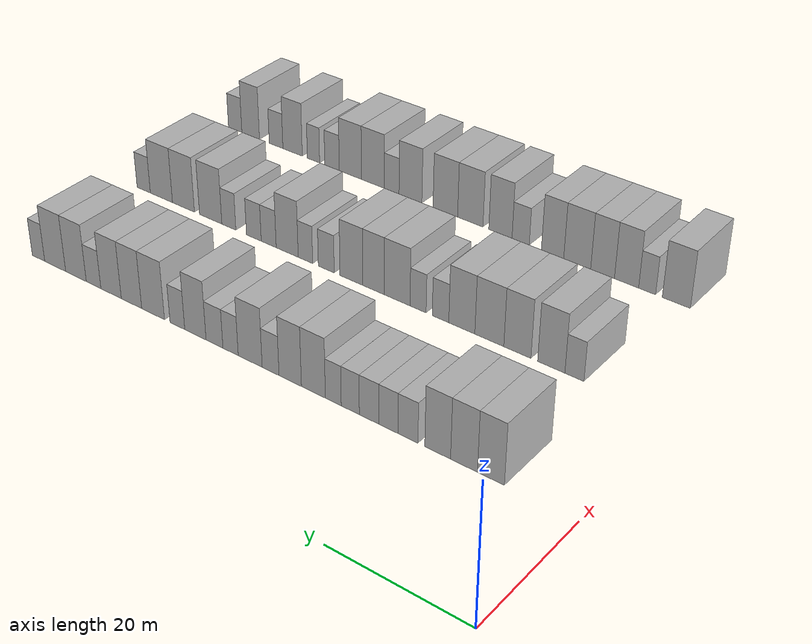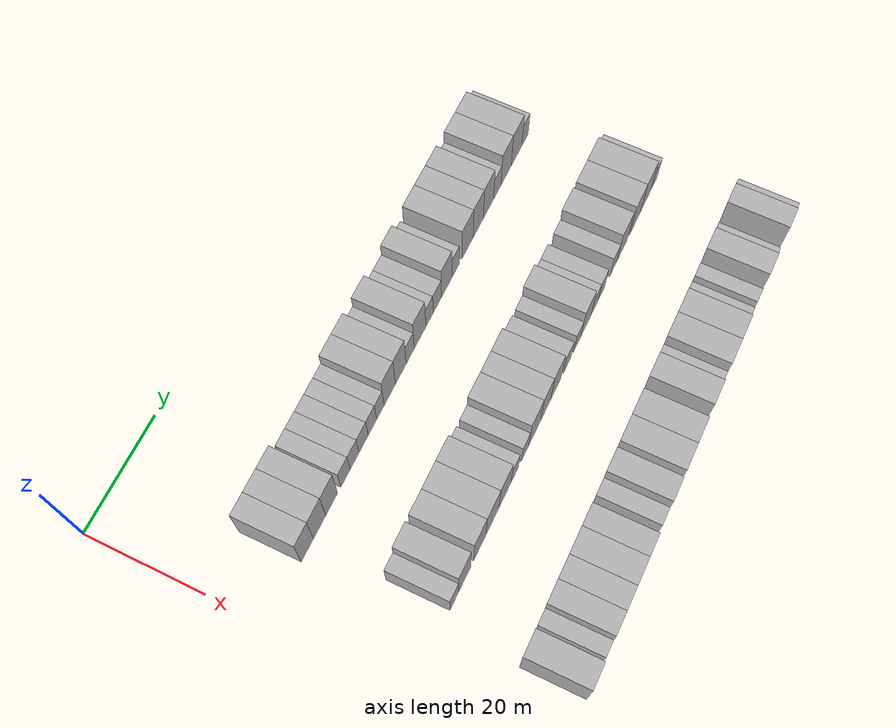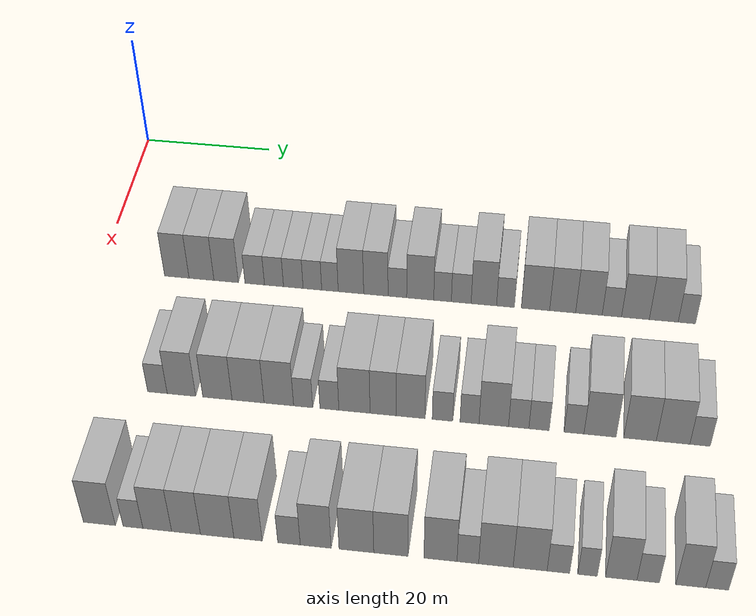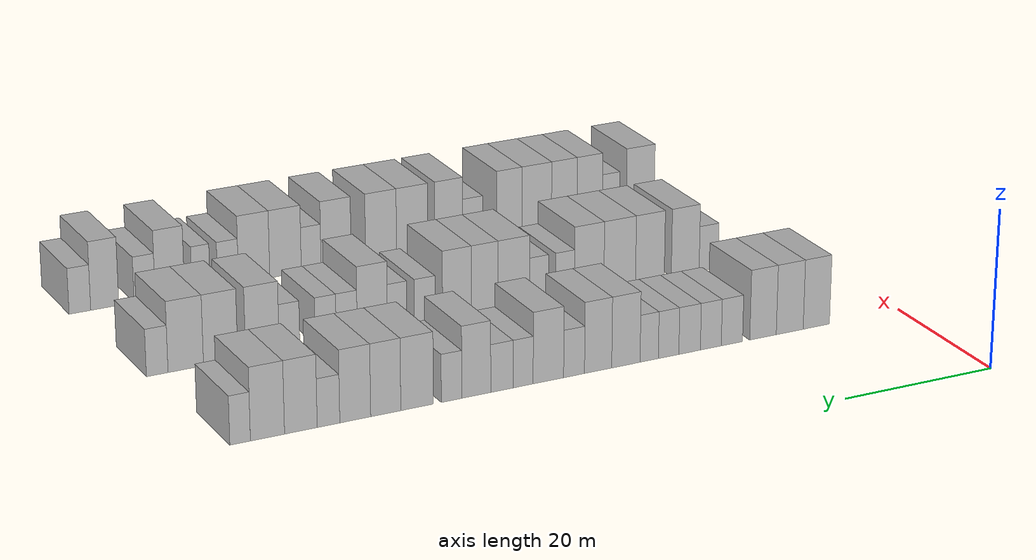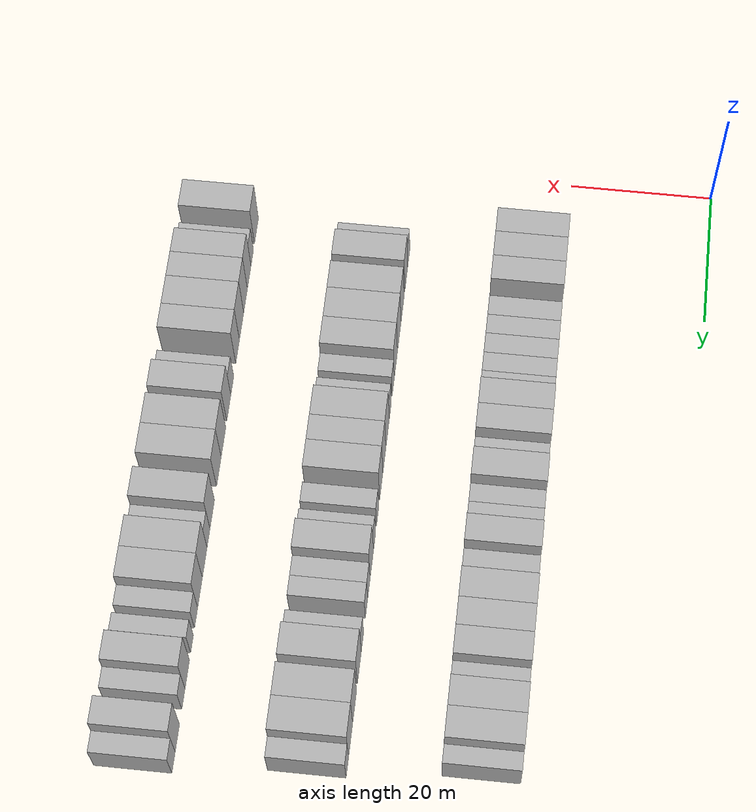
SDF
<sdf version="1.6">
 <world name="default">
  <model name="building_59">
   <static>1</static>
   <pose>25.0000 11.7343 0 0.000000 0.000000 0.000000</pose>
   <link name="link">
    <pose>0 0 4.50 0 0 0</pose>
    <collision name="collision"><geometry><box><size>10.0000 3.7056 9.0000</size></box></geometry></collision>
    <visual name="visual">
     <cast_shadows>0</cast_shadows>
     <geometry><box><size>10.0000 3.7056 9.0000</size></box></geometry>
     <material>
      <script>
       <uri>model://HANNAS_wall/materials/scripts</uri>
       <uri>model://HANNAS_wall/materials/textures</uri>
       <name>vrc/HANNAS_wall</name>
      </script>
     </material>
    </visual>
   </link>
  </model>
  <model name="building_60">
   <static>1</static>
   <pose>25.0000 15.4737 0 0.000000 0.000000 0.000000</pose>
   <link name="link">
    <pose>0 0 4.50 0 0 0</pose>
    <collision name="collision"><geometry><box><size>10.0000 3.7731 9.0000</size></box></geometry></collision>
    <visual name="visual">
     <cast_shadows>0</cast_shadows>
     <geometry><box><size>10.0000 3.7731 9.0000</size></box></geometry>
     <material>
      <script>
       <uri>model://HANNAS_wall/materials/scripts</uri>
       <uri>model://HANNAS_wall/materials/textures</uri>
       <name>vrc/HANNAS_wall</name>
      </script>
     </material>
    </visual>
   </link>
  </model>
  <model name="building_61">
   <static>1</static>
   <pose>25.0000 19.2028 0 0.000000 0.000000 0.000000</pose>
   <link name="link">
    <pose>0 0 4.50 0 0 0</pose>
    <collision name="collision"><geometry><box><size>10.0000 3.6852 9.0000</size></box></geometry></collision>
    <visual name="visual">
     <cast_shadows>0</cast_shadows>
     <geometry><box><size>10.0000 3.6852 9.0000</size></box></geometry>
     <material>
      <script>
       <uri>model://HANNAS_wall/materials/scripts</uri>
       <uri>model://HANNAS_wall/materials/textures</uri>
       <name>vrc/HANNAS_wall</name>
      </script>
     </material>
    </visual>
   </link>
  </model>
  <model name="building_62">
   <static>1</static>
   <pose>25.0000 23.5116 0 0.000000 0.000000 0.000000</pose>
   <link name="link">
    <pose>0 0 3.00 0 0 0</pose>
    <collision name="collision"><geometry><box><size>10.0000 2.9324 6.0000</size></box></geometry></collision>
    <visual name="visual">
     <cast_shadows>0</cast_shadows>
     <geometry><box><size>10.0000 2.9324 6.0000</size></box></geometry>
     <material>
      <script>
       <uri>model://HANNAS_wall/materials/scripts</uri>
       <uri>model://HANNAS_wall/materials/textures</uri>
       <name>vrc/HANNAS_wall</name>
      </script>
     </material>
    </visual>
   </link>
  </model>
  <model name="building_63">
   <static>1</static>
   <pose>25.0000 26.4066 0 0.000000 0.000000 0.000000</pose>
   <link name="link">
    <pose>0 0 3.00 0 0 0</pose>
    <collision name="collision"><geometry><box><size>10.0000 2.8575 6.0000</size></box></geometry></collision>
    <visual name="visual">
     <cast_shadows>0</cast_shadows>
     <geometry><box><size>10.0000 2.8575 6.0000</size></box></geometry>
     <material>
      <script>
       <uri>model://HANNAS_wall/materials/scripts</uri>
       <uri>model://HANNAS_wall/materials/textures</uri>
       <name>vrc/HANNAS_wall</name>
      </script>
     </material>
    </visual>
   </link>
  </model>
  <model name="building_64">
   <static>1</static>
   <pose>25.0000 29.3015 0 0.000000 0.000000 0.000000</pose>
   <link name="link">
    <pose>0 0 3.00 0 0 0</pose>
    <collision name="collision"><geometry><box><size>10.0000 2.9322 6.0000</size></box></geometry></collision>
    <visual name="visual">
     <cast_shadows>0</cast_shadows>
     <geometry><box><size>10.0000 2.9322 6.0000</size></box></geometry>
     <material>
      <script>
       <uri>model://HANNAS_wall/materials/scripts</uri>
       <uri>model://HANNAS_wall/materials/textures</uri>
       <name>vrc/HANNAS_wall</name>
      </script>
     </material>
    </visual>
   </link>
  </model>
  <model name="building_65">
   <static>1</static>
   <pose>25.0000 32.1560 0 0.000000 0.000000 0.000000</pose>
   <link name="link">
    <pose>0 0 3.00 0 0 0</pose>
    <collision name="collision"><geometry><box><size>10.0000 2.7769 6.0000</size></box></geometry></collision>
    <visual name="visual">
     <cast_shadows>0</cast_shadows>
     <geometry><box><size>10.0000 2.7769 6.0000</size></box></geometry>
     <material>
      <script>
       <uri>model://HANNAS_wall/materials/scripts</uri>
       <uri>model://HANNAS_wall/materials/textures</uri>
       <name>vrc/HANNAS_wall</name>
      </script>
     </material>
    </visual>
   </link>
  </model>
  <model name="building_66">
   <static>1</static>
   <pose>25.0000 34.7752 0 0.000000 0.000000 0.000000</pose>
   <link name="link">
    <pose>0 0 3.00 0 0 0</pose>
    <collision name="collision"><geometry><box><size>10.0000 2.4614 6.0000</size></box></geometry></collision>
    <visual name="visual">
     <cast_shadows>0</cast_shadows>
     <geometry><box><size>10.0000 2.4614 6.0000</size></box></geometry>
     <material>
      <script>
       <uri>model://HANNAS_wall/materials/scripts</uri>
       <uri>model://HANNAS_wall/materials/textures</uri>
       <name>vrc/HANNAS_wall</name>
      </script>
     </material>
    </visual>
   </link>
  </model>
  <model name="building_67">
   <static>1</static>
   <pose>25.0000 37.8999 0 0.000000 0.000000 0.000000</pose>
   <link name="link">
    <pose>0 0 4.50 0 0 0</pose>
    <collision name="collision"><geometry><box><size>10.0000 3.7882 9.0000</size></box></geometry></collision>
    <visual name="visual">
     <cast_shadows>0</cast_shadows>
     <geometry><box><size>10.0000 3.7882 9.0000</size></box></geometry>
     <material>
      <script>
       <uri>model://HANNAS_wall/materials/scripts</uri>
       <uri>model://HANNAS_wall/materials/textures</uri>
       <name>vrc/HANNAS_wall</name>
      </script>
     </material>
    </visual>
   </link>
  </model>
  <model name="building_68">
   <static>1</static>
   <pose>25.0000 41.6004 0 0.000000 0.000000 0.000000</pose>
   <link name="link">
    <pose>0 0 4.50 0 0 0</pose>
    <collision name="collision"><geometry><box><size>10.0000 3.6127 9.0000</size></box></geometry></collision>
    <visual name="visual">
     <cast_shadows>0</cast_shadows>
     <geometry><box><size>10.0000 3.6127 9.0000</size></box></geometry>
     <material>
      <script>
       <uri>model://HANNAS_wall/materials/scripts</uri>
       <uri>model://HANNAS_wall/materials/textures</uri>
       <name>vrc/HANNAS_wall</name>
      </script>
     </material>
    </visual>
   </link>
  </model>
  <model name="building_69">
   <static>1</static>
   <pose>25.0000 44.7845 0 0.000000 0.000000 0.000000</pose>
   <link name="link">
    <pose>0 0 3.00 0 0 0</pose>
    <collision name="collision"><geometry><box><size>10.0000 2.7555 6.0000</size></box></geometry></collision>
    <visual name="visual">
     <cast_shadows>0</cast_shadows>
     <geometry><box><size>10.0000 2.7555 6.0000</size></box></geometry>
     <material>
      <script>
       <uri>model://HANNAS_wall/materials/scripts</uri>
       <uri>model://HANNAS_wall/materials/textures</uri>
       <name>vrc/HANNAS_wall</name>
      </script>
     </material>
    </visual>
   </link>
  </model>
  <model name="building_70">
   <static>1</static>
   <pose>25.0000 48.1586 0 0.000000 0.000000 0.000000</pose>
   <link name="link">
    <pose>0 0 4.50 0 0 0</pose>
    <collision name="collision"><geometry><box><size>10.0000 3.9929 9.0000</size></box></geometry></collision>
    <visual name="visual">
     <cast_shadows>0</cast_shadows>
     <geometry><box><size>10.0000 3.9929 9.0000</size></box></geometry>
     <material>
      <script>
       <uri>model://HANNAS_wall/materials/scripts</uri>
       <uri>model://HANNAS_wall/materials/textures</uri>
       <name>vrc/HANNAS_wall</name>
      </script>
     </material>
    </visual>
   </link>
  </model>
  <model name="building_71">
   <static>1</static>
   <pose>25.0000 51.4512 0 0.000000 0.000000 0.000000</pose>
   <link name="link">
    <pose>0 0 3.00 0 0 0</pose>
    <collision name="collision"><geometry><box><size>10.0000 2.5922 6.0000</size></box></geometry></collision>
    <visual name="visual">
     <cast_shadows>0</cast_shadows>
     <geometry><box><size>10.0000 2.5922 6.0000</size></box></geometry>
     <material>
      <script>
       <uri>model://HANNAS_wall/materials/scripts</uri>
       <uri>model://HANNAS_wall/materials/textures</uri>
       <name>vrc/HANNAS_wall</name>
      </script>
     </material>
    </visual>
   </link>
  </model>
  <model name="building_72">
   <static>1</static>
   <pose>25.0000 54.1988 0 0.000000 0.000000 0.000000</pose>
   <link name="link">
    <pose>0 0 3.00 0 0 0</pose>
    <collision name="collision"><geometry><box><size>10.0000 2.9031 6.0000</size></box></geometry></collision>
    <visual name="visual">
     <cast_shadows>0</cast_shadows>
     <geometry><box><size>10.0000 2.9031 6.0000</size></box></geometry>
     <material>
      <script>
       <uri>model://HANNAS_wall/materials/scripts</uri>
       <uri>model://HANNAS_wall/materials/textures</uri>
       <name>vrc/HANNAS_wall</name>
      </script>
     </material>
    </visual>
   </link>
  </model>
  <model name="building_73">
   <static>1</static>
   <pose>25.0000 57.5087 0 0.000000 0.000000 0.000000</pose>
   <link name="link">
    <pose>0 0 4.50 0 0 0</pose>
    <collision name="collision"><geometry><box><size>10.0000 3.7166 9.0000</size></box></geometry></collision>
    <visual name="visual">
     <cast_shadows>0</cast_shadows>
     <geometry><box><size>10.0000 3.7166 9.0000</size></box></geometry>
     <material>
      <script>
       <uri>model://HANNAS_wall/materials/scripts</uri>
       <uri>model://HANNAS_wall/materials/textures</uri>
       <name>vrc/HANNAS_wall</name>
      </script>
     </material>
    </visual>
   </link>
  </model>
  <model name="building_74">
   <static>1</static>
   <pose>25.0000 60.6715 0 0.000000 0.000000 0.000000</pose>
   <link name="link">
    <pose>0 0 3.00 0 0 0</pose>
    <collision name="collision"><geometry><box><size>10.0000 2.6091 6.0000</size></box></geometry></collision>
    <visual name="visual">
     <cast_shadows>0</cast_shadows>
     <geometry><box><size>10.0000 2.6091 6.0000</size></box></geometry>
     <material>
      <script>
       <uri>model://HANNAS_wall/materials/scripts</uri>
       <uri>model://HANNAS_wall/materials/textures</uri>
       <name>vrc/HANNAS_wall</name>
      </script>
     </material>
    </visual>
   </link>
  </model>
  <model name="building_75">
   <static>1</static>
   <pose>25.0000 65.0365 0 0.000000 0.000000 0.000000</pose>
   <link name="link">
    <pose>0 0 4.50 0 0 0</pose>
    <collision name="collision"><geometry><box><size>10.0000 4.1209 9.0000</size></box></geometry></collision>
    <visual name="visual">
     <cast_shadows>0</cast_shadows>
     <geometry><box><size>10.0000 4.1209 9.0000</size></box></geometry>
     <material>
      <script>
       <uri>model://HANNAS_wall/materials/scripts</uri>
       <uri>model://HANNAS_wall/materials/textures</uri>
       <name>vrc/HANNAS_wall</name>
      </script>
     </material>
    </visual>
   </link>
  </model>
  <model name="building_76">
   <static>1</static>
   <pose>25.0000 68.9827 0 0.000000 0.000000 0.000000</pose>
   <link name="link">
    <pose>0 0 4.50 0 0 0</pose>
    <collision name="collision"><geometry><box><size>10.0000 3.7713 9.0000</size></box></geometry></collision>
    <visual name="visual">
     <cast_shadows>0</cast_shadows>
     <geometry><box><size>10.0000 3.7713 9.0000</size></box></geometry>
     <material>
      <script>
       <uri>model://HANNAS_wall/materials/scripts</uri>
       <uri>model://HANNAS_wall/materials/textures</uri>
       <name>vrc/HANNAS_wall</name>
      </script>
     </material>
    </visual>
   </link>
  </model>
  <model name="building_77">
   <static>1</static>
   <pose>25.0000 72.7882 0 0.000000 0.000000 0.000000</pose>
   <link name="link">
    <pose>0 0 4.50 0 0 0</pose>
    <collision name="collision"><geometry><box><size>10.0000 3.8397 9.0000</size></box></geometry></collision>
    <visual name="visual">
     <cast_shadows>0</cast_shadows>
     <geometry><box><size>10.0000 3.8397 9.0000</size></box></geometry>
     <material>
      <script>
       <uri>model://HANNAS_wall/materials/scripts</uri>
       <uri>model://HANNAS_wall/materials/textures</uri>
       <name>vrc/HANNAS_wall</name>
      </script>
     </material>
    </visual>
   </link>
  </model>
  <model name="building_78">
   <static>1</static>
   <pose>25.0000 76.1027 0 0.000000 0.000000 0.000000</pose>
   <link name="link">
    <pose>0 0 3.00 0 0 0</pose>
    <collision name="collision"><geometry><box><size>10.0000 2.7894 6.0000</size></box></geometry></collision>
    <visual name="visual">
     <cast_shadows>0</cast_shadows>
     <geometry><box><size>10.0000 2.7894 6.0000</size></box></geometry>
     <material>
      <script>
       <uri>model://HANNAS_wall/materials/scripts</uri>
       <uri>model://HANNAS_wall/materials/textures</uri>
       <name>vrc/HANNAS_wall</name>
      </script>
     </material>
    </visual>
   </link>
  </model>
  <model name="building_79">
   <static>1</static>
   <pose>25.0000 79.4972 0 0.000000 0.000000 0.000000</pose>
   <link name="link">
    <pose>0 0 4.50 0 0 0</pose>
    <collision name="collision"><geometry><box><size>10.0000 3.9995 9.0000</size></box></geometry></collision>
    <visual name="visual">
     <cast_shadows>0</cast_shadows>
     <geometry><box><size>10.0000 3.9995 9.0000</size></box></geometry>
     <material>
      <script>
       <uri>model://HANNAS_wall/materials/scripts</uri>
       <uri>model://HANNAS_wall/materials/textures</uri>
       <name>vrc/HANNAS_wall</name>
      </script>
     </material>
    </visual>
   </link>
  </model>
  <model name="building_80">
   <static>1</static>
   <pose>25.0000 83.5687 0 0.000000 0.000000 0.000000</pose>
   <link name="link">
    <pose>0 0 4.50 0 0 0</pose>
    <collision name="collision"><geometry><box><size>10.0000 4.1435 9.0000</size></box></geometry></collision>
    <visual name="visual">
     <cast_shadows>0</cast_shadows>
     <geometry><box><size>10.0000 4.1435 9.0000</size></box></geometry>
     <material>
      <script>
       <uri>model://HANNAS_wall/materials/scripts</uri>
       <uri>model://HANNAS_wall/materials/textures</uri>
       <name>vrc/HANNAS_wall</name>
      </script>
     </material>
    </visual>
   </link>
  </model>
  <model name="building_81">
   <static>1</static>
   <pose>25.0000 86.8800 0 0.000000 0.000000 0.000000</pose>
   <link name="link">
    <pose>0 0 3.00 0 0 0</pose>
    <collision name="collision"><geometry><box><size>10.0000 2.4790 6.0000</size></box></geometry></collision>
    <visual name="visual">
     <cast_shadows>0</cast_shadows>
     <geometry><box><size>10.0000 2.4790 6.0000</size></box></geometry>
     <material>
      <script>
       <uri>model://HANNAS_wall/materials/scripts</uri>
       <uri>model://HANNAS_wall/materials/textures</uri>
       <name>vrc/HANNAS_wall</name>
      </script>
     </material>
    </visual>
   </link>
  </model>
  <model name="building_184">
   <static>1</static>
   <pose>47.0000 14.1451 0 0.000000 0.000000 0.000000</pose>
   <link name="link">
    <pose>0 0 3.00 0 0 0</pose>
    <collision name="collision"><geometry><box><size>10.0000 2.7631 6.0000</size></box></geometry></collision>
    <visual name="visual">
     <cast_shadows>0</cast_shadows>
     <geometry><box><size>10.0000 2.7631 6.0000</size></box></geometry>
     <material>
      <script>
       <uri>model://HANNAS_wall/materials/scripts</uri>
       <uri>model://HANNAS_wall/materials/textures</uri>
       <name>vrc/HANNAS_wall</name>
      </script>
     </material>
    </visual>
   </link>
  </model>
  <model name="building_185">
   <static>1</static>
   <pose>47.0000 17.5299 0 0.000000 0.000000 0.000000</pose>
   <link name="link">
    <pose>0 0 4.50 0 0 0</pose>
    <collision name="collision"><geometry><box><size>10.0000 4.0064 9.0000</size></box></geometry></collision>
    <visual name="visual">
     <cast_shadows>0</cast_shadows>
     <geometry><box><size>10.0000 4.0064 9.0000</size></box></geometry>
     <material>
      <script>
       <uri>model://HANNAS_wall/materials/scripts</uri>
       <uri>model://HANNAS_wall/materials/textures</uri>
       <name>vrc/HANNAS_wall</name>
      </script>
     </material>
    </visual>
   </link>
  </model>
  <model name="building_186">
   <static>1</static>
   <pose>47.0000 22.5826 0 0.000000 0.000000 0.000000</pose>
   <link name="link">
    <pose>0 0 4.50 0 0 0</pose>
    <collision name="collision"><geometry><box><size>10.0000 4.0991 9.0000</size></box></geometry></collision>
    <visual name="visual">
     <cast_shadows>0</cast_shadows>
     <geometry><box><size>10.0000 4.0991 9.0000</size></box></geometry>
     <material>
      <script>
       <uri>model://HANNAS_wall/materials/scripts</uri>
       <uri>model://HANNAS_wall/materials/textures</uri>
       <name>vrc/HANNAS_wall</name>
      </script>
     </material>
    </visual>
   </link>
  </model>
  <model name="building_187">
   <static>1</static>
   <pose>47.0000 26.8662 0 0.000000 0.000000 0.000000</pose>
   <link name="link">
    <pose>0 0 4.50 0 0 0</pose>
    <collision name="collision"><geometry><box><size>10.0000 4.4682 9.0000</size></box></geometry></collision>
    <visual name="visual">
     <cast_shadows>0</cast_shadows>
     <geometry><box><size>10.0000 4.4682 9.0000</size></box></geometry>
     <material>
      <script>
       <uri>model://HANNAS_wall/materials/scripts</uri>
       <uri>model://HANNAS_wall/materials/textures</uri>
       <name>vrc/HANNAS_wall</name>
      </script>
     </material>
    </visual>
   </link>
  </model>
  <model name="building_188">
   <static>1</static>
   <pose>47.0000 31.1547 0 0.000000 0.000000 0.000000</pose>
   <link name="link">
    <pose>0 0 4.50 0 0 0</pose>
    <collision name="collision"><geometry><box><size>10.0000 4.1088 9.0000</size></box></geometry></collision>
    <visual name="visual">
     <cast_shadows>0</cast_shadows>
     <geometry><box><size>10.0000 4.1088 9.0000</size></box></geometry>
     <material>
      <script>
       <uri>model://HANNAS_wall/materials/scripts</uri>
       <uri>model://HANNAS_wall/materials/textures</uri>
       <name>vrc/HANNAS_wall</name>
      </script>
     </material>
    </visual>
   </link>
  </model>
  <model name="building_189">
   <static>1</static>
   <pose>47.0000 34.5307 0 0.000000 0.000000 0.000000</pose>
   <link name="link">
    <pose>0 0 3.00 0 0 0</pose>
    <collision name="collision"><geometry><box><size>10.0000 2.6431 6.0000</size></box></geometry></collision>
    <visual name="visual">
     <cast_shadows>0</cast_shadows>
     <geometry><box><size>10.0000 2.6431 6.0000</size></box></geometry>
     <material>
      <script>
       <uri>model://HANNAS_wall/materials/scripts</uri>
       <uri>model://HANNAS_wall/materials/textures</uri>
       <name>vrc/HANNAS_wall</name>
      </script>
     </material>
    </visual>
   </link>
  </model>
  <model name="building_190">
   <static>1</static>
   <pose>47.0000 38.1600 0 0.000000 0.000000 0.000000</pose>
   <link name="link">
    <pose>0 0 3.00 0 0 0</pose>
    <collision name="collision"><geometry><box><size>10.0000 2.6156 6.0000</size></box></geometry></collision>
    <visual name="visual">
     <cast_shadows>0</cast_shadows>
     <geometry><box><size>10.0000 2.6156 6.0000</size></box></geometry>
     <material>
      <script>
       <uri>model://HANNAS_wall/materials/scripts</uri>
       <uri>model://HANNAS_wall/materials/textures</uri>
       <name>vrc/HANNAS_wall</name>
      </script>
     </material>
    </visual>
   </link>
  </model>
  <model name="building_191">
   <static>1</static>
   <pose>47.0000 41.6180 0 0.000000 0.000000 0.000000</pose>
   <link name="link">
    <pose>0 0 4.50 0 0 0</pose>
    <collision name="collision"><geometry><box><size>10.0000 4.3004 9.0000</size></box></geometry></collision>
    <visual name="visual">
     <cast_shadows>0</cast_shadows>
     <geometry><box><size>10.0000 4.3004 9.0000</size></box></geometry>
     <material>
      <script>
       <uri>model://HANNAS_wall/materials/scripts</uri>
       <uri>model://HANNAS_wall/materials/textures</uri>
       <name>vrc/HANNAS_wall</name>
      </script>
     </material>
    </visual>
   </link>
  </model>
  <model name="building_192">
   <static>1</static>
   <pose>47.0000 45.5760 0 0.000000 0.000000 0.000000</pose>
   <link name="link">
    <pose>0 0 4.50 0 0 0</pose>
    <collision name="collision"><geometry><box><size>10.0000 3.6156 9.0000</size></box></geometry></collision>
    <visual name="visual">
     <cast_shadows>0</cast_shadows>
     <geometry><box><size>10.0000 3.6156 9.0000</size></box></geometry>
     <material>
      <script>
       <uri>model://HANNAS_wall/materials/scripts</uri>
       <uri>model://HANNAS_wall/materials/textures</uri>
       <name>vrc/HANNAS_wall</name>
      </script>
     </material>
    </visual>
   </link>
  </model>
  <model name="building_193">
   <static>1</static>
   <pose>47.0000 49.3355 0 0.000000 0.000000 0.000000</pose>
   <link name="link">
    <pose>0 0 4.50 0 0 0</pose>
    <collision name="collision"><geometry><box><size>10.0000 3.9035 9.0000</size></box></geometry></collision>
    <visual name="visual">
     <cast_shadows>0</cast_shadows>
     <geometry><box><size>10.0000 3.9035 9.0000</size></box></geometry>
     <material>
      <script>
       <uri>model://HANNAS_wall/materials/scripts</uri>
       <uri>model://HANNAS_wall/materials/textures</uri>
       <name>vrc/HANNAS_wall</name>
      </script>
     </material>
    </visual>
   </link>
  </model>
  <model name="building_194">
   <static>1</static>
   <pose>47.0000 53.6799 0 0.000000 0.000000 0.000000</pose>
   <link name="link">
    <pose>0 0 3.00 0 0 0</pose>
    <collision name="collision"><geometry><box><size>10.0000 2.7852 6.0000</size></box></geometry></collision>
    <visual name="visual">
     <cast_shadows>0</cast_shadows>
     <geometry><box><size>10.0000 2.7852 6.0000</size></box></geometry>
     <material>
      <script>
       <uri>model://HANNAS_wall/materials/scripts</uri>
       <uri>model://HANNAS_wall/materials/textures</uri>
       <name>vrc/HANNAS_wall</name>
      </script>
     </material>
    </visual>
   </link>
  </model>
  <model name="building_195">
   <static>1</static>
   <pose>47.0000 57.3645 0 0.000000 0.000000 0.000000</pose>
   <link name="link">
    <pose>0 0 3.00 0 0 0</pose>
    <collision name="collision"><geometry><box><size>10.0000 2.5841 6.0000</size></box></geometry></collision>
    <visual name="visual">
     <cast_shadows>0</cast_shadows>
     <geometry><box><size>10.0000 2.5841 6.0000</size></box></geometry>
     <material>
      <script>
       <uri>model://HANNAS_wall/materials/scripts</uri>
       <uri>model://HANNAS_wall/materials/textures</uri>
       <name>vrc/HANNAS_wall</name>
      </script>
     </material>
    </visual>
   </link>
  </model>
  <model name="building_196">
   <static>1</static>
   <pose>47.0000 60.6505 0 0.000000 0.000000 0.000000</pose>
   <link name="link">
    <pose>0 0 4.50 0 0 0</pose>
    <collision name="collision"><geometry><box><size>10.0000 3.9880 9.0000</size></box></geometry></collision>
    <visual name="visual">
     <cast_shadows>0</cast_shadows>
     <geometry><box><size>10.0000 3.9880 9.0000</size></box></geometry>
     <material>
      <script>
       <uri>model://HANNAS_wall/materials/scripts</uri>
       <uri>model://HANNAS_wall/materials/textures</uri>
       <name>vrc/HANNAS_wall</name>
      </script>
     </material>
    </visual>
   </link>
  </model>
  <model name="building_197">
   <static>1</static>
   <pose>47.0000 64.0205 0 0.000000 0.000000 0.000000</pose>
   <link name="link">
    <pose>0 0 3.00 0 0 0</pose>
    <collision name="collision"><geometry><box><size>10.0000 2.7521 6.0000</size></box></geometry></collision>
    <visual name="visual">
     <cast_shadows>0</cast_shadows>
     <geometry><box><size>10.0000 2.7521 6.0000</size></box></geometry>
     <material>
      <script>
       <uri>model://HANNAS_wall/materials/scripts</uri>
       <uri>model://HANNAS_wall/materials/textures</uri>
       <name>vrc/HANNAS_wall</name>
      </script>
     </material>
    </visual>
   </link>
  </model>
  <model name="building_198">
   <static>1</static>
   <pose>47.0000 66.7691 0 0.000000 0.000000 0.000000</pose>
   <link name="link">
    <pose>0 0 3.00 0 0 0</pose>
    <collision name="collision"><geometry><box><size>10.0000 2.7449 6.0000</size></box></geometry></collision>
    <visual name="visual">
     <cast_shadows>0</cast_shadows>
     <geometry><box><size>10.0000 2.7449 6.0000</size></box></geometry>
     <material>
      <script>
       <uri>model://HANNAS_wall/materials/scripts</uri>
       <uri>model://HANNAS_wall/materials/textures</uri>
       <name>vrc/HANNAS_wall</name>
      </script>
     </material>
    </visual>
   </link>
  </model>
  <model name="building_199">
   <static>1</static>
   <pose>47.0000 71.4759 0 0.000000 0.000000 0.000000</pose>
   <link name="link">
    <pose>0 0 3.00 0 0 0</pose>
    <collision name="collision"><geometry><box><size>10.0000 2.6687 6.0000</size></box></geometry></collision>
    <visual name="visual">
     <cast_shadows>0</cast_shadows>
     <geometry><box><size>10.0000 2.6687 6.0000</size></box></geometry>
     <material>
      <script>
       <uri>model://HANNAS_wall/materials/scripts</uri>
       <uri>model://HANNAS_wall/materials/textures</uri>
       <name>vrc/HANNAS_wall</name>
      </script>
     </material>
    </visual>
   </link>
  </model>
  <model name="building_200">
   <static>1</static>
   <pose>47.0000 74.9646 0 0.000000 0.000000 0.000000</pose>
   <link name="link">
    <pose>0 0 4.50 0 0 0</pose>
    <collision name="collision"><geometry><box><size>10.0000 4.3087 9.0000</size></box></geometry></collision>
    <visual name="visual">
     <cast_shadows>0</cast_shadows>
     <geometry><box><size>10.0000 4.3087 9.0000</size></box></geometry>
     <material>
      <script>
       <uri>model://HANNAS_wall/materials/scripts</uri>
       <uri>model://HANNAS_wall/materials/textures</uri>
       <name>vrc/HANNAS_wall</name>
      </script>
     </material>
    </visual>
   </link>
  </model>
  <model name="building_201">
   <static>1</static>
   <pose>47.0000 80.2940 0 0.000000 0.000000 0.000000</pose>
   <link name="link">
    <pose>0 0 4.50 0 0 0</pose>
    <collision name="collision"><geometry><box><size>10.0000 4.3501 9.0000</size></box></geometry></collision>
    <visual name="visual">
     <cast_shadows>0</cast_shadows>
     <geometry><box><size>10.0000 4.3501 9.0000</size></box></geometry>
     <material>
      <script>
       <uri>model://HANNAS_wall/materials/scripts</uri>
       <uri>model://HANNAS_wall/materials/textures</uri>
       <name>vrc/HANNAS_wall</name>
      </script>
     </material>
    </visual>
   </link>
  </model>
  <model name="building_202">
   <static>1</static>
   <pose>47.0000 84.6994 0 0.000000 0.000000 0.000000</pose>
   <link name="link">
    <pose>0 0 4.50 0 0 0</pose>
    <collision name="collision"><geometry><box><size>10.0000 4.4607 9.0000</size></box></geometry></collision>
    <visual name="visual">
     <cast_shadows>0</cast_shadows>
     <geometry><box><size>10.0000 4.4607 9.0000</size></box></geometry>
     <material>
      <script>
       <uri>model://HANNAS_wall/materials/scripts</uri>
       <uri>model://HANNAS_wall/materials/textures</uri>
       <name>vrc/HANNAS_wall</name>
      </script>
     </material>
    </visual>
   </link>
  </model>
  <model name="building_203">
   <static>1</static>
   <pose>47.0000 88.2813 0 0.000000 0.000000 0.000000</pose>
   <link name="link">
    <pose>0 0 3.00 0 0 0</pose>
    <collision name="collision"><geometry><box><size>10.0000 2.7030 6.0000</size></box></geometry></collision>
    <visual name="visual">
     <cast_shadows>0</cast_shadows>
     <geometry><box><size>10.0000 2.7030 6.0000</size></box></geometry>
     <material>
      <script>
       <uri>model://HANNAS_wall/materials/scripts</uri>
       <uri>model://HANNAS_wall/materials/textures</uri>
       <name>vrc/HANNAS_wall</name>
      </script>
     </material>
    </visual>
   </link>
  </model>
  <model name="building_317">
   <static>1</static>
   <pose>69.0000 11.9413 0 0.000000 0.000000 0.000000</pose>
   <link name="link">
    <pose>0 0 4.50 0 0 0</pose>
    <collision name="collision"><geometry><box><size>10.0000 4.1863 9.0000</size></box></geometry></collision>
    <visual name="visual">
     <cast_shadows>0</cast_shadows>
     <geometry><box><size>10.0000 4.1863 9.0000</size></box></geometry>
     <material>
      <script>
       <uri>model://HANNAS_wall/materials/scripts</uri>
       <uri>model://HANNAS_wall/materials/textures</uri>
       <name>vrc/HANNAS_wall</name>
      </script>
     </material>
    </visual>
   </link>
  </model>
  <model name="building_318">
   <static>1</static>
   <pose>69.0000 16.3263 0 0.000000 0.000000 0.000000</pose>
   <link name="link">
    <pose>0 0 3.00 0 0 0</pose>
    <collision name="collision"><geometry><box><size>10.0000 2.5839 6.0000</size></box></geometry></collision>
    <visual name="visual">
     <cast_shadows>0</cast_shadows>
     <geometry><box><size>10.0000 2.5839 6.0000</size></box></geometry>
     <material>
      <script>
       <uri>model://HANNAS_wall/materials/scripts</uri>
       <uri>model://HANNAS_wall/materials/textures</uri>
       <name>vrc/HANNAS_wall</name>
      </script>
     </material>
    </visual>
   </link>
  </model>
  <model name="building_319">
   <static>1</static>
   <pose>69.0000 19.4855 0 0.000000 0.000000 0.000000</pose>
   <link name="link">
    <pose>0 0 4.50 0 0 0</pose>
    <collision name="collision"><geometry><box><size>10.0000 3.7343 9.0000</size></box></geometry></collision>
    <visual name="visual">
     <cast_shadows>0</cast_shadows>
     <geometry><box><size>10.0000 3.7343 9.0000</size></box></geometry>
     <material>
      <script>
       <uri>model://HANNAS_wall/materials/scripts</uri>
       <uri>model://HANNAS_wall/materials/textures</uri>
       <name>vrc/HANNAS_wall</name>
      </script>
     </material>
    </visual>
   </link>
  </model>
  <model name="building_320">
   <static>1</static>
   <pose>69.0000 23.2195 0 0.000000 0.000000 0.000000</pose>
   <link name="link">
    <pose>0 0 4.50 0 0 0</pose>
    <collision name="collision"><geometry><box><size>10.0000 3.7338 9.0000</size></box></geometry></collision>
    <visual name="visual">
     <cast_shadows>0</cast_shadows>
     <geometry><box><size>10.0000 3.7338 9.0000</size></box></geometry>
     <material>
      <script>
       <uri>model://HANNAS_wall/materials/scripts</uri>
       <uri>model://HANNAS_wall/materials/textures</uri>
       <name>vrc/HANNAS_wall</name>
      </script>
     </material>
    </visual>
   </link>
  </model>
  <model name="building_321">
   <static>1</static>
   <pose>69.0000 27.2432 0 0.000000 0.000000 0.000000</pose>
   <link name="link">
    <pose>0 0 4.50 0 0 0</pose>
    <collision name="collision"><geometry><box><size>10.0000 4.3134 9.0000</size></box></geometry></collision>
    <visual name="visual">
     <cast_shadows>0</cast_shadows>
     <geometry><box><size>10.0000 4.3134 9.0000</size></box></geometry>
     <material>
      <script>
       <uri>model://HANNAS_wall/materials/scripts</uri>
       <uri>model://HANNAS_wall/materials/textures</uri>
       <name>vrc/HANNAS_wall</name>
      </script>
     </material>
    </visual>
   </link>
  </model>
  <model name="building_322">
   <static>1</static>
   <pose>69.0000 31.2192 0 0.000000 0.000000 0.000000</pose>
   <link name="link">
    <pose>0 0 4.50 0 0 0</pose>
    <collision name="collision"><geometry><box><size>10.0000 3.6385 9.0000</size></box></geometry></collision>
    <visual name="visual">
     <cast_shadows>0</cast_shadows>
     <geometry><box><size>10.0000 3.6385 9.0000</size></box></geometry>
     <material>
      <script>
       <uri>model://HANNAS_wall/materials/scripts</uri>
       <uri>model://HANNAS_wall/materials/textures</uri>
       <name>vrc/HANNAS_wall</name>
      </script>
     </material>
    </visual>
   </link>
  </model>
  <model name="building_323">
   <static>1</static>
   <pose>69.0000 36.4762 0 0.000000 0.000000 0.000000</pose>
   <link name="link">
    <pose>0 0 3.00 0 0 0</pose>
    <collision name="collision"><geometry><box><size>10.0000 2.8757 6.0000</size></box></geometry></collision>
    <visual name="visual">
     <cast_shadows>0</cast_shadows>
     <geometry><box><size>10.0000 2.8757 6.0000</size></box></geometry>
     <material>
      <script>
       <uri>model://HANNAS_wall/materials/scripts</uri>
       <uri>model://HANNAS_wall/materials/textures</uri>
       <name>vrc/HANNAS_wall</name>
      </script>
     </material>
    </visual>
   </link>
  </model>
  <model name="building_324">
   <static>1</static>
   <pose>69.0000 39.8839 0 0.000000 0.000000 0.000000</pose>
   <link name="link">
    <pose>0 0 4.50 0 0 0</pose>
    <collision name="collision"><geometry><box><size>10.0000 3.9396 9.0000</size></box></geometry></collision>
    <visual name="visual">
     <cast_shadows>0</cast_shadows>
     <geometry><box><size>10.0000 3.9396 9.0000</size></box></geometry>
     <material>
      <script>
       <uri>model://HANNAS_wall/materials/scripts</uri>
       <uri>model://HANNAS_wall/materials/textures</uri>
       <name>vrc/HANNAS_wall</name>
      </script>
     </material>
    </visual>
   </link>
  </model>
  <model name="building_325">
   <static>1</static>
   <pose>69.0000 45.0560 0 0.000000 0.000000 0.000000</pose>
   <link name="link">
    <pose>0 0 4.50 0 0 0</pose>
    <collision name="collision"><geometry><box><size>10.0000 4.4047 9.0000</size></box></geometry></collision>
    <visual name="visual">
     <cast_shadows>0</cast_shadows>
     <geometry><box><size>10.0000 4.4047 9.0000</size></box></geometry>
     <material>
      <script>
       <uri>model://HANNAS_wall/materials/scripts</uri>
       <uri>model://HANNAS_wall/materials/textures</uri>
       <name>vrc/HANNAS_wall</name>
      </script>
     </material>
    </visual>
   </link>
  </model>
  <model name="building_326">
   <static>1</static>
   <pose>69.0000 49.4253 0 0.000000 0.000000 0.000000</pose>
   <link name="link">
    <pose>0 0 4.50 0 0 0</pose>
    <collision name="collision"><geometry><box><size>10.0000 4.3339 9.0000</size></box></geometry></collision>
    <visual name="visual">
     <cast_shadows>0</cast_shadows>
     <geometry><box><size>10.0000 4.3339 9.0000</size></box></geometry>
     <material>
      <script>
       <uri>model://HANNAS_wall/materials/scripts</uri>
       <uri>model://HANNAS_wall/materials/textures</uri>
       <name>vrc/HANNAS_wall</name>
      </script>
     </material>
    </visual>
   </link>
  </model>
  <model name="building_327">
   <static>1</static>
   <pose>69.0000 55.6702 0 0.000000 0.000000 0.000000</pose>
   <link name="link">
    <pose>0 0 4.50 0 0 0</pose>
    <collision name="collision"><geometry><box><size>10.0000 4.1558 9.0000</size></box></geometry></collision>
    <visual name="visual">
     <cast_shadows>0</cast_shadows>
     <geometry><box><size>10.0000 4.1558 9.0000</size></box></geometry>
     <material>
      <script>
       <uri>model://HANNAS_wall/materials/scripts</uri>
       <uri>model://HANNAS_wall/materials/textures</uri>
       <name>vrc/HANNAS_wall</name>
      </script>
     </material>
    </visual>
   </link>
  </model>
  <model name="building_328">
   <static>1</static>
   <pose>69.0000 59.1036 0 0.000000 0.000000 0.000000</pose>
   <link name="link">
    <pose>0 0 3.00 0 0 0</pose>
    <collision name="collision"><geometry><box><size>10.0000 2.7111 6.0000</size></box></geometry></collision>
    <visual name="visual">
     <cast_shadows>0</cast_shadows>
     <geometry><box><size>10.0000 2.7111 6.0000</size></box></geometry>
     <material>
      <script>
       <uri>model://HANNAS_wall/materials/scripts</uri>
       <uri>model://HANNAS_wall/materials/textures</uri>
       <name>vrc/HANNAS_wall</name>
      </script>
     </material>
    </visual>
   </link>
  </model>
  <model name="building_329">
   <static>1</static>
   <pose>69.0000 62.6083 0 0.000000 0.000000 0.000000</pose>
   <link name="link">
    <pose>0 0 4.50 0 0 0</pose>
    <collision name="collision"><geometry><box><size>10.0000 4.2983 9.0000</size></box></geometry></collision>
    <visual name="visual">
     <cast_shadows>0</cast_shadows>
     <geometry><box><size>10.0000 4.2983 9.0000</size></box></geometry>
     <material>
      <script>
       <uri>model://HANNAS_wall/materials/scripts</uri>
       <uri>model://HANNAS_wall/materials/textures</uri>
       <name>vrc/HANNAS_wall</name>
      </script>
     </material>
    </visual>
   </link>
  </model>
  <model name="building_330">
   <static>1</static>
   <pose>69.0000 66.8680 0 0.000000 0.000000 0.000000</pose>
   <link name="link">
    <pose>0 0 4.50 0 0 0</pose>
    <collision name="collision"><geometry><box><size>10.0000 4.2211 9.0000</size></box></geometry></collision>
    <visual name="visual">
     <cast_shadows>0</cast_shadows>
     <geometry><box><size>10.0000 4.2211 9.0000</size></box></geometry>
     <material>
      <script>
       <uri>model://HANNAS_wall/materials/scripts</uri>
       <uri>model://HANNAS_wall/materials/textures</uri>
       <name>vrc/HANNAS_wall</name>
      </script>
     </material>
    </visual>
   </link>
  </model>
  <model name="building_331">
   <static>1</static>
   <pose>69.0000 70.3787 0 0.000000 0.000000 0.000000</pose>
   <link name="link">
    <pose>0 0 3.00 0 0 0</pose>
    <collision name="collision"><geometry><box><size>10.0000 2.8003 6.0000</size></box></geometry></collision>
    <visual name="visual">
     <cast_shadows>0</cast_shadows>
     <geometry><box><size>10.0000 2.8003 6.0000</size></box></geometry>
     <material>
      <script>
       <uri>model://HANNAS_wall/materials/scripts</uri>
       <uri>model://HANNAS_wall/materials/textures</uri>
       <name>vrc/HANNAS_wall</name>
      </script>
     </material>
    </visual>
   </link>
  </model>
  <model name="building_332">
   <static>1</static>
   <pose>69.0000 73.9835 0 0.000000 0.000000 0.000000</pose>
   <link name="link">
    <pose>0 0 3.00 0 0 0</pose>
    <collision name="collision"><geometry><box><size>10.0000 2.4092 6.0000</size></box></geometry></collision>
    <visual name="visual">
     <cast_shadows>0</cast_shadows>
     <geometry><box><size>10.0000 2.4092 6.0000</size></box></geometry>
     <material>
      <script>
       <uri>model://HANNAS_wall/materials/scripts</uri>
       <uri>model://HANNAS_wall/materials/textures</uri>
       <name>vrc/HANNAS_wall</name>
      </script>
     </material>
    </visual>
   </link>
  </model>
  <model name="building_333">
   <static>1</static>
   <pose>69.0000 78.1279 0 0.000000 0.000000 0.000000</pose>
   <link name="link">
    <pose>0 0 4.50 0 0 0</pose>
    <collision name="collision"><geometry><box><size>10.0000 3.8796 9.0000</size></box></geometry></collision>
    <visual name="visual">
     <cast_shadows>0</cast_shadows>
     <geometry><box><size>10.0000 3.8796 9.0000</size></box></geometry>
     <material>
      <script>
       <uri>model://HANNAS_wall/materials/scripts</uri>
       <uri>model://HANNAS_wall/materials/textures</uri>
       <name>vrc/HANNAS_wall</name>
      </script>
     </material>
    </visual>
   </link>
  </model>
  <model name="building_334">
   <static>1</static>
   <pose>69.0000 81.4492 0 0.000000 0.000000 0.000000</pose>
   <link name="link">
    <pose>0 0 3.00 0 0 0</pose>
    <collision name="collision"><geometry><box><size>10.0000 2.7631 6.0000</size></box></geometry></collision>
    <visual name="visual">
     <cast_shadows>0</cast_shadows>
     <geometry><box><size>10.0000 2.7631 6.0000</size></box></geometry>
     <material>
      <script>
       <uri>model://HANNAS_wall/materials/scripts</uri>
       <uri>model://HANNAS_wall/materials/textures</uri>
       <name>vrc/HANNAS_wall</name>
      </script>
     </material>
    </visual>
   </link>
  </model>
  <model name="building_335">
   <static>1</static>
   <pose>69.0000 86.6550 0 0.000000 0.000000 0.000000</pose>
   <link name="link">
    <pose>0 0 4.50 0 0 0</pose>
    <collision name="collision"><geometry><box><size>10.0000 3.6486 9.0000</size></box></geometry></collision>
    <visual name="visual">
     <cast_shadows>0</cast_shadows>
     <geometry><box><size>10.0000 3.6486 9.0000</size></box></geometry>
     <material>
      <script>
       <uri>model://HANNAS_wall/materials/scripts</uri>
       <uri>model://HANNAS_wall/materials/textures</uri>
       <name>vrc/HANNAS_wall</name>
      </script>
     </material>
    </visual>
   </link>
  </model>
  <model name="building_336">
   <static>1</static>
   <pose>69.0000 89.8768 0 0.000000 0.000000 0.000000</pose>
   <link name="link">
    <pose>0 0 3.00 0 0 0</pose>
    <collision name="collision"><geometry><box><size>10.0000 2.7950 6.0000</size></box></geometry></collision>
    <visual name="visual">
     <cast_shadows>0</cast_shadows>
     <geometry><box><size>10.0000 2.7950 6.0000</size></box></geometry>
     <material>
      <script>
       <uri>model://HANNAS_wall/materials/scripts</uri>
       <uri>model://HANNAS_wall/materials/textures</uri>
       <name>vrc/HANNAS_wall</name>
      </script>
     </material>
    </visual>
   </link>
  </model>
 </world>
</sdf>
